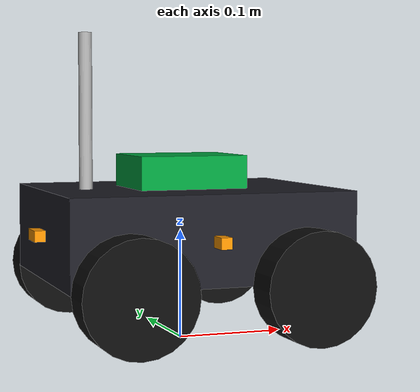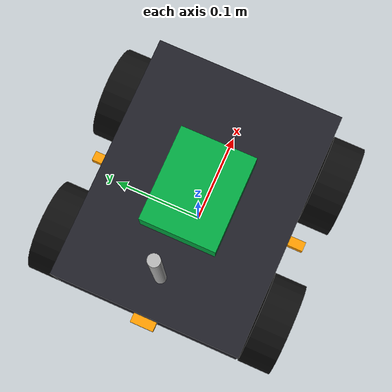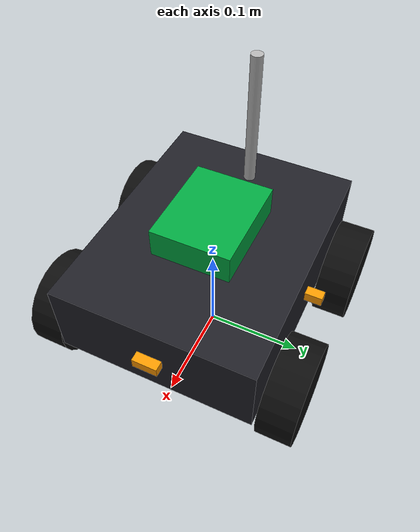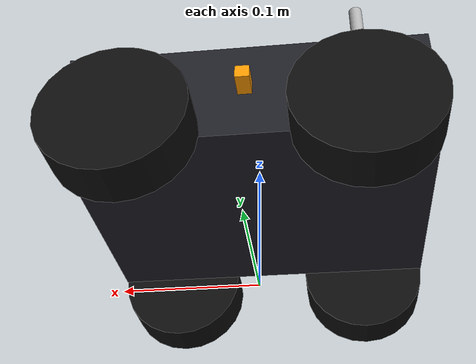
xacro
<?xml version="1.0"?>
<robot xmlns:xacro="http://www.ros.org/wiki/xacro" name="multisensor_fusion_rover">

  <!-- Color Definitions -->
  <material name="chassis_dark">
    <color rgba="0.12 0.12 0.15 1.0"/>
  </material>
  <material name="jetson_green">
    <color rgba="0.0 0.65 0.25 1.0"/>
  </material>
  <material name="wheel_dark">
    <color rgba="0.05 0.05 0.05 1.0"/>
  </material>
  <material name="tof_amber">
    <color rgba="1.0 0.6 0.0 1.0"/>
  </material>
  <material name="bno_blue">
    <color rgba="0.0 0.4 0.9 1.0"/>
  </material>
  <material name="antenna_silver">
    <color rgba="0.7 0.7 0.7 1.0"/>
  </material>

  <!-- Footprint -->
  <link name="base_footprint"/>

  <joint name="base_footprint_joint" type="fixed">
    <parent link="base_footprint"/>
    <child link="base_link"/>
    <origin xyz="0 0 0.06" rpy="0 0 0"/>
  </joint>

  <!-- Main Chassis -->
  <link name="base_link">
    <visual>
      <origin xyz="0 0 0.04" rpy="0 0 0"/>
      <geometry>
        <box size="0.26 0.20 0.08"/>
      </geometry>
      <material name="chassis_dark"/>
    </visual>
    <collision>
      <origin xyz="0 0 0.04" rpy="0 0 0"/>
      <geometry>
        <box size="0.26 0.20 0.08"/>
      </geometry>
    </collision>
    <inertial>
      <origin xyz="0 0 0.04" rpy="0 0 0"/>
      <mass value="2.8"/>
      <inertia ixx="0.015" ixy="0.0" ixz="0.0" iyy="0.022" iyz="0.0" izz="0.028"/>
    </inertial>
  </link>

  <!-- NVIDIA Jetson Orin Nano Representation -->
  <link name="jetson_orin_nano_link">
    <visual>
      <origin xyz="0 0 0" rpy="0 0 0"/>
      <geometry>
        <box size="0.10 0.08 0.03"/>
      </geometry>
      <material name="jetson_green"/>
    </visual>
  </link>
  <joint name="jetson_joint" type="fixed">
    <parent link="base_link"/>
    <child link="jetson_orin_nano_link"/>
    <origin xyz="0.0 0 0.095" rpy="0 0 0"/>
  </joint>

  <!-- Wheel Macro -->
  <xacro:macro name="wheel" params="prefix x_reflect y_reflect">
    <link name="${prefix}_wheel">
      <visual>
        <origin xyz="0 0 0" rpy="1.5707963 0 0"/>
        <geometry>
          <cylinder radius="0.05" length="0.035"/>
        </geometry>
        <material name="wheel_dark"/>
      </visual>
      <collision>
        <origin xyz="0 0 0" rpy="1.5707963 0 0"/>
        <geometry>
          <cylinder radius="0.05" length="0.035"/>
        </geometry>
      </collision>
      <inertial>
        <origin xyz="0 0 0" rpy="0 0 0"/>
        <mass value="0.2"/>
        <inertia ixx="0.0003" ixy="0" ixz="0" iyy="0.0003" iyz="0" izz="0.0005"/>
      </inertial>
    </link>

    <joint name="${prefix}_wheel_joint" type="continuous">
      <parent link="base_link"/>
      <child link="${prefix}_wheel"/>
      <origin xyz="${x_reflect * 0.08} ${y_reflect * 0.12} 0.0" rpy="0 0 0"/>
      <axis xyz="0 1 0"/>
    </joint>
  </xacro:macro>

  <xacro:wheel prefix="front_left" x_reflect="1" y_reflect="1"/>
  <xacro:wheel prefix="front_right" x_reflect="1" y_reflect="-1"/>
  <xacro:wheel prefix="rear_left" x_reflect="-1" y_reflect="1"/>
  <xacro:wheel prefix="rear_right" x_reflect="-1" y_reflect="-1"/>

  <!-- BNO085 9-Axis IMU Sensor -->
  <link name="imu_link">
    <visual>
      <origin xyz="0 0 0" rpy="0 0 0"/>
      <geometry>
        <box size="0.02 0.02 0.005"/>
      </geometry>
      <material name="bno_blue"/>
    </visual>
  </link>
  <joint name="imu_joint" type="fixed">
    <parent link="base_link"/>
    <child link="imu_link"/>
    <origin xyz="0.0 0.0 0.05" rpy="0 0 0"/>
  </joint>

  <!-- Wi-Fi Antenna Link -->
  <link name="wifi_antenna_link">
    <visual>
      <origin xyz="0 0 0" rpy="0 0 0"/>
      <geometry>
        <cylinder radius="0.006" length="0.14"/>
      </geometry>
      <material name="antenna_silver"/>
    </visual>
  </link>
  <joint name="wifi_antenna_joint" type="fixed">
    <parent link="base_link"/>
    <child link="wifi_antenna_link"/>
    <origin xyz="-0.09 0.0 0.15" rpy="0 0 0"/>
  </joint>

  <!-- 4x VL53L0X ToF Distance Sensors (Front, Left, Right, Rear) -->
  <link name="tof_front_link">
    <visual><origin xyz="0 0 0" rpy="0 0 0"/><geometry><box size="0.01 0.025 0.01"/></geometry><material name="tof_amber"/></visual>
  </link>
  <joint name="tof_front_joint" type="fixed">
    <parent link="base_link"/><child link="tof_front_link"/><origin xyz="0.135 0.0 0.04" rpy="0 0 0"/>
  </joint>

  <link name="tof_left_link">
    <visual><origin xyz="0 0 0" rpy="0 0 1.5707963"/><geometry><box size="0.01 0.025 0.01"/></geometry><material name="tof_amber"/></visual>
  </link>
  <joint name="tof_left_joint" type="fixed">
    <parent link="base_link"/><child link="tof_left_link"/><origin xyz="0.0 0.105 0.04" rpy="0 0 1.5707963"/>
  </joint>

  <link name="tof_right_link">
    <visual><origin xyz="0 0 0" rpy="0 0 -1.5707963"/><geometry><box size="0.01 0.025 0.01"/></geometry><material name="tof_amber"/></visual>
  </link>
  <joint name="tof_right_joint" type="fixed">
    <parent link="base_link"/><child link="tof_right_link"/><origin xyz="0.0 -0.105 0.04" rpy="0 0 -1.5707963"/>
  </joint>

  <link name="tof_rear_link">
    <visual><origin xyz="0 0 0" rpy="0 0 3.1415926"/><geometry><box size="0.01 0.025 0.01"/></geometry><material name="tof_amber"/></visual>
  </link>
  <joint name="tof_rear_joint" type="fixed">
    <parent link="base_link"/><child link="tof_rear_link"/><origin xyz="-0.135 0.0 0.04" rpy="0 0 3.1415926"/>
  </joint>

  <!-- Gazebo Kinematics DiffDrive Motion Plugin (Strict 1 left joint, 1 right joint specification) -->
  <gazebo>
    <plugin filename="ign-gazebo-diff-drive-system" name="ignition::gazebo::systems::DiffDrive">
      <left_joint>rear_left_wheel_joint</left_joint>
      <right_joint>rear_right_wheel_joint</right_joint>
      <wheel_separation>0.24</wheel_separation>
      <wheel_radius>0.05</wheel_radius>
      <odom_publish_frequency>30</odom_publish_frequency>
      <topic>/cmd_vel</topic>
      <odom_topic>/odom</odom_topic>
      <tf_topic>/tf</tf_topic>
      <frame_id>odom</frame_id>
      <child_frame_id>base_footprint</child_frame_id>
    </plugin>
  </gazebo>

  <!-- Gazebo Sensor Plugins -->
  <gazebo reference="imu_link">
    <sensor name="bno085_imu" type="imu">
      <always_on>true</always_on>
      <update_rate>50</update_rate>
      <topic>/imu/data</topic>
    </sensor>
  </gazebo>

  <gazebo reference="tof_front_link">
    <sensor name="tof_front_sensor" type="ray">
      <always_on>true</always_on>
      <update_rate>20</update_rate>
      <ray>
        <scan><horizontal><samples>1</samples><resolution>1</resolution><min_angle>0.0</min_angle><max_angle>0.0</max_angle></horizontal></scan>
        <range><min>0.03</min><max>2.0</max><resolution>0.001</resolution></range>
      </ray>
      <topic>/tof/sim/front</topic>
    </sensor>
  </gazebo>

  <gazebo reference="tof_left_link">
    <sensor name="tof_left_sensor" type="ray">
      <always_on>true</always_on>
      <update_rate>20</update_rate>
      <ray>
        <scan><horizontal><samples>1</samples><resolution>1</resolution><min_angle>0.0</min_angle><max_angle>0.0</max_angle></horizontal></scan>
        <range><min>0.03</min><max>2.0</max><resolution>0.001</resolution></range>
      </ray>
      <topic>/tof/sim/left</topic>
    </sensor>
  </gazebo>

  <gazebo reference="tof_right_link">
    <sensor name="tof_right_sensor" type="ray">
      <always_on>true</always_on>
      <update_rate>20</update_rate>
      <ray>
        <scan><horizontal><samples>1</samples><resolution>1</resolution><min_angle>0.0</min_angle><max_angle>0.0</max_angle></horizontal></scan>
        <range><min>0.03</min><max>2.0</max><resolution>0.001</resolution></range>
      </ray>
      <topic>/tof/sim/right</topic>
    </sensor>
  </gazebo>

  <gazebo reference="tof_rear_link">
    <sensor name="tof_rear_sensor" type="ray">
      <always_on>true</always_on>
      <update_rate>20</update_rate>
      <ray>
        <scan><horizontal><samples>1</samples><resolution>1</resolution><min_angle>0.0</min_angle><max_angle>0.0</max_angle></horizontal></scan>
        <range><min>0.03</min><max>2.0</max><resolution>0.001</resolution></range>
      </ray>
      <topic>/tof/sim/rear</topic>
    </sensor>
  </gazebo>

</robot>
